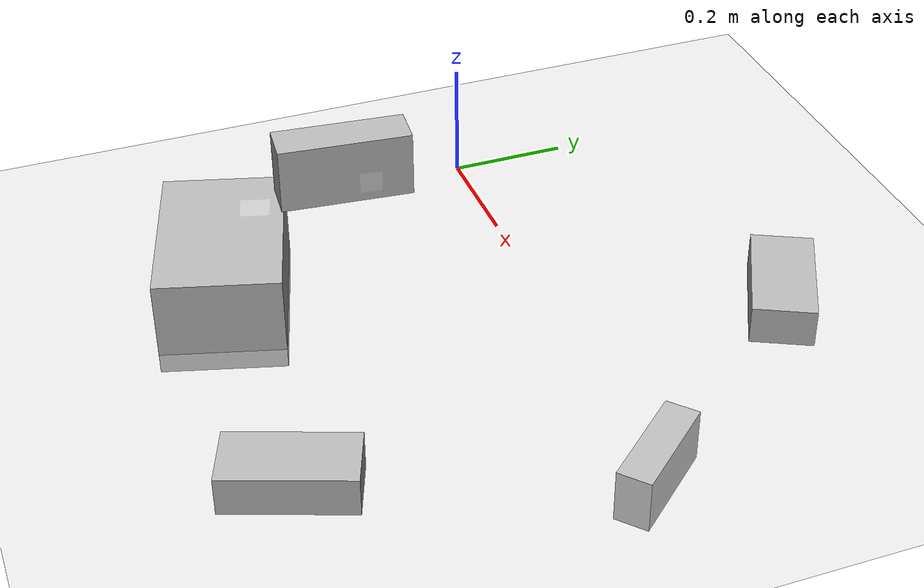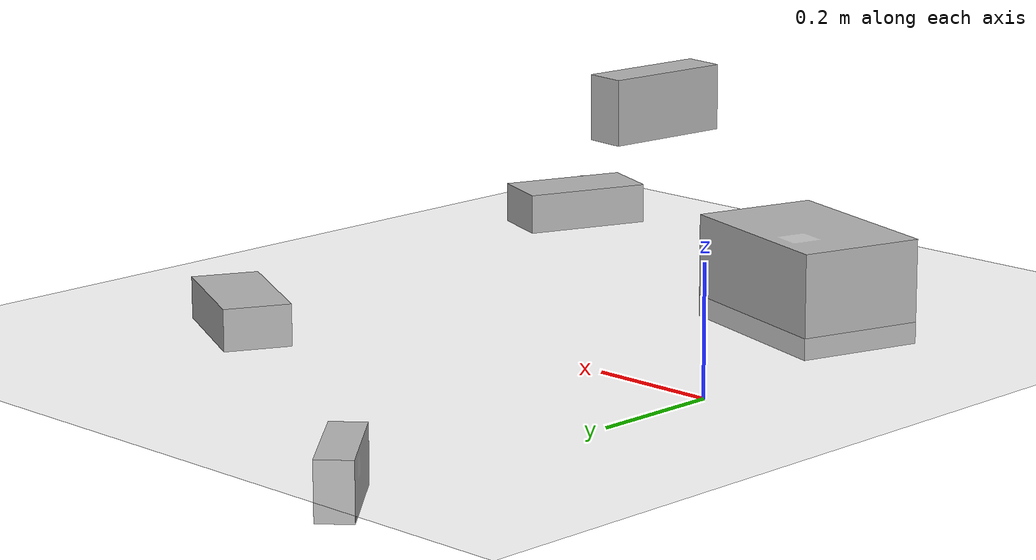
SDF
<sdf version="1.7">
 <world name="default">
  <plugin name="ros_link_attacher_plugin" filename="libplugin_pneumatic_gripper.so"/>
  <plugin name="plugin_collision_publish" filename="libplugin_collision_publish.so"/>
  <light name="sun" type="directional">
   <pose>0 0 10 0 -0 0</pose>
   <diffuse>0.8 0.8 0.8 1</diffuse>
   <specular>0.2 0.2 0.2 1</specular>
   <attenuation>
    <range>1000</range>
    <constant>0.9</constant>
    <linear>0.01</linear>
    <quadratic>0.001</quadratic>
   </attenuation>
   <direction>-0.5 0.1 -0.9</direction>
   <spot><inner_angle>0</inner_angle><outer_angle>0</outer_angle><falloff>0</falloff></spot>
  </light>
  <model name="ground_plane">
   <static>1</static>
   <link name="link">
    <collision name="collision">
     <geometry><plane><normal>0 0 1</normal><size>100 100</size></plane></geometry>
     <surface><friction><ode><mu>100</mu><mu2>50</mu2></ode></friction></surface>
    </collision>
    <visual name="visual">
     <cast_shadows>0</cast_shadows>
     <geometry><plane><normal>0 0 1</normal><size>100 100</size></plane></geometry>
     <material>
      <script><uri>file://media/materials/scripts/gazebo.material</uri><name>Gazebo/Grey</name></script>
     </material>
    </visual>
    <enable_wind>1</enable_wind>
   </link>
   <enable_wind>1</enable_wind>
  </model>
  <gravity>0 0 -9.8</gravity>
  <magnetic_field>6e-06 2.3e-05 -4.2e-05</magnetic_field>
  <atmosphere type="adiabatic"/>
  <physics type="ode">
   <max_step_size>0.001</max_step_size>
   <real_time_factor>1</real_time_factor>
   <real_time_update_rate>1000</real_time_update_rate>
  </physics>
  <scene><ambient>0.4 0.4 0.4 1</ambient><background>0.7 0.7 0.7 1</background><shadows>1</shadows></scene>
  <spherical_coordinates>
   <surface_model>EARTH_WGS84</surface_model>
   <latitude_deg>0</latitude_deg>
   <longitude_deg>0</longitude_deg>
   <elevation>0</elevation>
   <heading_deg>0</heading_deg>
  </spherical_coordinates>
  <light name="user_directional_light_0" type="directional">
   <pose>9.22363 9.30195 1 0 -0 0</pose>
   <diffuse>0.5 0.5 0.5 1</diffuse>
   <specular>0.1 0.1 0.1 1</specular>
   <direction>0.1 0.1 -0.9</direction>
   <attenuation>
    <range>20</range>
    <constant>0.5</constant>
    <linear>0.01</linear>
    <quadratic>0.001</quadratic>
   </attenuation>
   <spot><inner_angle>0</inner_angle><outer_angle>0</outer_angle><falloff>0</falloff></spot>
  </light>
  <light name="user_directional_light_1" type="directional">
   <pose>9.14809 -9.33168 1 0 -0 0</pose>
   <diffuse>0.5 0.5 0.5 1</diffuse>
   <specular>0.1 0.1 0.1 1</specular>
   <direction>0.1 0.1 -0.9</direction>
   <attenuation>
    <range>20</range>
    <constant>0.5</constant>
    <linear>0.01</linear>
    <quadratic>0.001</quadratic>
   </attenuation>
   <spot><inner_angle>0</inner_angle><outer_angle>0</outer_angle><falloff>0</falloff></spot>
  </light>
  <light name="user_directional_light_2" type="directional">
   <pose>-9.37298 9.38045 1 0 -0 0</pose>
   <diffuse>0.5 0.5 0.5 1</diffuse>
   <specular>0.1 0.1 0.1 1</specular>
   <direction>0.1 0.1 -0.9</direction>
   <attenuation>
    <range>20</range>
    <constant>0.5</constant>
    <linear>0.01</linear>
    <quadratic>0.001</quadratic>
   </attenuation>
   <spot><inner_angle>0</inner_angle><outer_angle>0</outer_angle><falloff>0</falloff></spot>
  </light>
  <light name="user_directional_light_3" type="directional">
   <pose>-9.57927 -9.54885 1 0 -0 0</pose>
   <diffuse>0.5 0.5 0.5 1</diffuse>
   <specular>0.1 0.1 0.1 1</specular>
   <direction>0.1 0.1 -0.9</direction>
   <attenuation>
    <range>20</range>
    <constant>0.5</constant>
    <linear>0.01</linear>
    <quadratic>0.001</quadratic>
   </attenuation>
   <spot><inner_angle>0</inner_angle><outer_angle>0</outer_angle><falloff>0</falloff></spot>
  </light>
  <model name="medium_box_1_clone_0">
   <link name="link">
    <inertial>
     <mass>1</mass>
     <inertia><ixy>0</ixy><ixz>0</ixz><iyz>0</iyz><ixx>0.05288</ixx><iyy>0.05288</iyy><izz>0.09132</izz></inertia>
    </inertial>
    <visual name="visual">
     <geometry><mesh><uri>model://medium_boxes/meshes/medium_box.dae</uri><scale>1 1 1</scale></mesh></geometry>
     <meta><layer>1</layer></meta>
     <material><shader type="pixel"><normal_map>__default__</normal_map></shader></material>
    </visual>
    <collision name="collision">
     <geometry><mesh><uri>model://medium_boxes/meshes/medium_box.dae</uri><scale>1 1 1</scale></mesh></geometry>
     <surface>
      <friction>
       <ode><mu>1</mu><mu2>1</mu2><fdir1>0 0 0</fdir1><slip1>0</slip1><slip2>0</slip2></ode>
       <torsional>
        <coefficient>1</coefficient>
        <patch_radius>0</patch_radius>
        <surface_radius>0</surface_radius>
        <use_patch_radius>1</use_patch_radius>
        <ode><slip>0</slip></ode>
       </torsional>
      </friction>
      <bounce><restitution_coefficient>0</restitution_coefficient><threshold>0</threshold></bounce>
      <contact>
       <collide_without_contact>0</collide_without_contact>
       <collide_without_contact_bitmask>1</collide_without_contact_bitmask>
       <collide_bitmask>1</collide_bitmask>
       <ode>
        <soft_cfm>0</soft_cfm>
        <soft_erp>0.2</soft_erp>
        <kp>100000</kp>
        <kd>1</kd>
        <max_vel>0.001</max_vel>
        <min_depth>0</min_depth>
       </ode>
       <bullet>
        <split_impulse>1</split_impulse>
        <split_impulse_penetration_threshold>-0.01</split_impulse_penetration_threshold>
        <soft_cfm>0</soft_cfm>
        <soft_erp>0.2</soft_erp>
        <kp>100000</kp>
        <kd>1</kd>
       </bullet>
      </contact>
     </surface>
    </collision>
   </link>
   <static>0</static>
   <pose>0.210108 -0.019595 0.110045 -0.00014 -7e-06 -0.284083</pose>
  </model>
  <model name="small_box_1_clone">
   <link name="link">
    <inertial>
     <mass>0.72</mass>
     <inertia><ixy>0</ixy><ixz>0</ixz><iyz>0</iyz><ixx>0.05288</ixx><iyy>0.05288</iyy><izz>0.09132</izz></inertia>
    </inertial>
    <visual name="visual">
     <geometry><mesh><uri>model://small_boxes/meshes/small_box.dae</uri><scale>1 1 1</scale></mesh></geometry>
     <meta><layer>1</layer></meta>
     <material><shader type="pixel"><normal_map>__default__</normal_map></shader></material>
    </visual>
    <collision name="collision">
     <geometry><mesh><uri>model://small_boxes/meshes/small_box.dae</uri><scale>1 1 1</scale></mesh></geometry>
     <surface>
      <friction>
       <ode><mu>1000</mu><mu2>1000</mu2><fdir1>0 0 0</fdir1><slip1>0</slip1><slip2>0</slip2></ode>
       <torsional>
        <coefficient>1</coefficient>
        <patch_radius>0</patch_radius>
        <surface_radius>0</surface_radius>
        <use_patch_radius>1</use_patch_radius>
        <ode><slip>0</slip></ode>
       </torsional>
      </friction>
      <bounce><restitution_coefficient>0</restitution_coefficient><threshold>0</threshold></bounce>
      <contact>
       <collide_without_contact>0</collide_without_contact>
       <collide_without_contact_bitmask>1</collide_without_contact_bitmask>
       <collide_bitmask>1</collide_bitmask>
       <ode>
        <soft_cfm>0</soft_cfm>
        <soft_erp>0.2</soft_erp>
        <kp>1e+06</kp>
        <kd>1</kd>
        <max_vel>0.01</max_vel>
        <min_depth>0</min_depth>
       </ode>
       <bullet>
        <split_impulse>1</split_impulse>
        <split_impulse_penetration_threshold>-0.01</split_impulse_penetration_threshold>
        <soft_cfm>0</soft_cfm>
        <soft_erp>0.2</soft_erp>
        <kp>1e+06</kp>
        <kd>1</kd>
       </bullet>
      </contact>
     </surface>
    </collision>
   </link>
   <static>0</static>
   <pose>0.324326 0.160008 0.019538 3.14159 -1e-06 -0.470367</pose>
  </model>
  <model name="small_box_1_clone_0">
   <link name="link">
    <inertial>
     <mass>0.72</mass>
     <inertia><ixy>0</ixy><ixz>0</ixz><iyz>0</iyz><ixx>0.05288</ixx><iyy>0.05288</iyy><izz>0.09132</izz></inertia>
    </inertial>
    <visual name="visual">
     <geometry><mesh><uri>model://small_boxes/meshes/small_box.dae</uri><scale>1 1 1</scale></mesh></geometry>
     <meta><layer>1</layer></meta>
     <material><shader type="pixel"><normal_map>__default__</normal_map></shader></material>
    </visual>
    <collision name="collision">
     <geometry><mesh><uri>model://small_boxes/meshes/small_box.dae</uri><scale>1 1 1</scale></mesh></geometry>
     <surface>
      <friction>
       <ode><mu>1000</mu><mu2>1000</mu2><fdir1>0 0 0</fdir1><slip1>0</slip1><slip2>0</slip2></ode>
       <torsional>
        <coefficient>1</coefficient>
        <patch_radius>0</patch_radius>
        <surface_radius>0</surface_radius>
        <use_patch_radius>1</use_patch_radius>
        <ode><slip>0</slip></ode>
       </torsional>
      </friction>
      <bounce><restitution_coefficient>0</restitution_coefficient><threshold>0</threshold></bounce>
      <contact>
       <collide_without_contact>0</collide_without_contact>
       <collide_without_contact_bitmask>1</collide_without_contact_bitmask>
       <collide_bitmask>1</collide_bitmask>
       <ode>
        <soft_cfm>0</soft_cfm>
        <soft_erp>0.2</soft_erp>
        <kp>1e+06</kp>
        <kd>1</kd>
        <max_vel>0.01</max_vel>
        <min_depth>0</min_depth>
       </ode>
       <bullet>
        <split_impulse>1</split_impulse>
        <split_impulse_penetration_threshold>-0.01</split_impulse_penetration_threshold>
        <soft_cfm>0</soft_cfm>
        <soft_erp>0.2</soft_erp>
        <kp>1e+06</kp>
        <kd>1</kd>
       </bullet>
      </contact>
     </surface>
    </collision>
   </link>
   <static>0</static>
   <pose>0.577206 -0.24642 0.019538 3.14159 -1e-06 -1.93521</pose>
  </model>
  <model name="small_box_1_clone_1">
   <link name="link">
    <inertial>
     <mass>0.72</mass>
     <inertia><ixy>0</ixy><ixz>0</ixz><iyz>0</iyz><ixx>0.05288</ixx><iyy>0.05288</iyy><izz>0.09132</izz></inertia>
    </inertial>
    <visual name="visual">
     <geometry><mesh><uri>model://small_boxes/meshes/small_box.dae</uri><scale>1 1 1</scale></mesh></geometry>
     <meta><layer>1</layer></meta>
     <material><shader type="pixel"><normal_map>__default__</normal_map></shader></material>
    </visual>
    <collision name="collision">
     <geometry><mesh><uri>model://small_boxes/meshes/small_box.dae</uri><scale>1 1 1</scale></mesh></geometry>
     <surface>
      <friction>
       <ode><mu>1000</mu><mu2>1000</mu2><fdir1>0 0 0</fdir1><slip1>0</slip1><slip2>0</slip2></ode>
       <torsional>
        <coefficient>1</coefficient>
        <patch_radius>0</patch_radius>
        <surface_radius>0</surface_radius>
        <use_patch_radius>1</use_patch_radius>
        <ode><slip>0</slip></ode>
       </torsional>
      </friction>
      <bounce><restitution_coefficient>0</restitution_coefficient><threshold>0</threshold></bounce>
      <contact>
       <collide_without_contact>0</collide_without_contact>
       <collide_without_contact_bitmask>1</collide_without_contact_bitmask>
       <collide_bitmask>1</collide_bitmask>
       <ode>
        <soft_cfm>0</soft_cfm>
        <soft_erp>0.2</soft_erp>
        <kp>1e+06</kp>
        <kd>1</kd>
        <max_vel>0.01</max_vel>
        <min_depth>0</min_depth>
       </ode>
       <bullet>
        <split_impulse>1</split_impulse>
        <split_impulse_penetration_threshold>-0.01</split_impulse_penetration_threshold>
        <soft_cfm>0</soft_cfm>
        <soft_erp>0.2</soft_erp>
        <kp>1e+06</kp>
        <kd>1</kd>
       </bullet>
      </contact>
     </surface>
    </collision>
   </link>
   <static>0</static>
   <pose>0.471485 0.226365 0.057717 1.5708 -1e-06 -0.845915</pose>
  </model>
  <model name="small_box_1_clone_2">
   <link name="link">
    <inertial>
     <mass>0.72</mass>
     <inertia><ixy>0</ixy><ixz>0</ixz><iyz>0</iyz><ixx>0.05288</ixx><iyy>0.05288</iyy><izz>0.09132</izz></inertia>
    </inertial>
    <visual name="visual">
     <geometry><mesh><uri>model://small_boxes/meshes/small_box.dae</uri><scale>1 1 1</scale></mesh></geometry>
     <meta><layer>1</layer></meta>
     <material><shader type="pixel"><normal_map>__default__</normal_map></shader></material>
    </visual>
    <collision name="collision">
     <geometry><mesh><uri>model://small_boxes/meshes/small_box.dae</uri><scale>1 1 1</scale></mesh></geometry>
     <surface>
      <friction>
       <ode><mu>1000</mu><mu2>1000</mu2><fdir1>0 0 0</fdir1><slip1>0</slip1><slip2>0</slip2></ode>
       <torsional>
        <coefficient>1</coefficient>
        <patch_radius>0</patch_radius>
        <surface_radius>0</surface_radius>
        <use_patch_radius>1</use_patch_radius>
        <ode><slip>0</slip></ode>
       </torsional>
      </friction>
      <bounce><restitution_coefficient>0</restitution_coefficient><threshold>0</threshold></bounce>
      <contact>
       <collide_without_contact>0</collide_without_contact>
       <collide_without_contact_bitmask>1</collide_without_contact_bitmask>
       <collide_bitmask>1</collide_bitmask>
       <ode>
        <soft_cfm>0</soft_cfm>
        <soft_erp>0.2</soft_erp>
        <kp>1e+06</kp>
        <kd>1</kd>
        <max_vel>0.01</max_vel>
        <min_depth>0</min_depth>
       </ode>
       <bullet>
        <split_impulse>1</split_impulse>
        <split_impulse_penetration_threshold>-0.01</split_impulse_penetration_threshold>
        <soft_cfm>0</soft_cfm>
        <soft_erp>0.2</soft_erp>
        <kp>1e+06</kp>
        <kd>1</kd>
       </bullet>
      </contact>
     </surface>
    </collision>
   </link>
   <static>0</static>
   <pose>0.478142 -0.139386 0.043882 -1.57081 -3e-06 -1.66671</pose>
  </model>
  <light name="user_directional_light_4" type="directional">
   <pose>0.072583 9.49417 1 0 -0 0</pose>
   <diffuse>0.5 0.5 0.5 1</diffuse>
   <specular>0.1 0.1 0.1 1</specular>
   <direction>0.1 0.1 -0.9</direction>
   <attenuation>
    <range>20</range>
    <constant>0.5</constant>
    <linear>0.01</linear>
    <quadratic>0.001</quadratic>
   </attenuation>
   <spot><inner_angle>0</inner_angle><outer_angle>0</outer_angle><falloff>0</falloff></spot>
  </light>
  <light name="user_directional_light_5" type="directional">
   <pose>-0.277591 -9.80792 1 0 -0 0</pose>
   <diffuse>0.5 0.5 0.5 1</diffuse>
   <specular>0.1 0.1 0.1 1</specular>
   <direction>0.1 0.1 -0.9</direction>
   <attenuation>
    <range>20</range>
    <constant>0.5</constant>
    <linear>0.01</linear>
    <quadratic>0.001</quadratic>
   </attenuation>
   <spot><inner_angle>0</inner_angle><outer_angle>0</outer_angle><falloff>0</falloff></spot>
  </light>
 </world>
</sdf>
